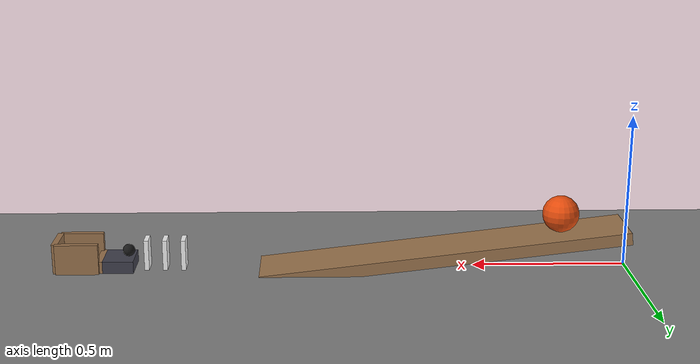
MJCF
<mujoco model="ramp_ball_domino_chain_into_cup">
  <compiler angle="radian"/>
  <option timestep="0.002"/>
  <worldbody>
    <geom name="floor" type="plane" size="6 6 0.1" friction="0.8 0.005 0.002"/>
    <body name="ramp">
      <geom name="ramp" type="box" pos="0.6 0 0.05" size="0.60407 0.1 0.02" euler="0 0.116142 0" friction="0.8 0.005 0.002" rgba="0.6 0.45 0.3 1"/>
    </body>
    <body name="ball1" pos="0.215869 0 0.175358">
      <freejoint/>
      <geom name="ball1" type="sphere" pos="0 0 0" size="0.06" mass="0.08" condim="6" friction="0.8 0.005 0.002" rgba="0.9 0.3 0.05 1"/>
    </body>
    <body name="d1" pos="1.45 0 0.05">
      <freejoint/>
      <geom name="d1" type="box" pos="0 0 0" size="0.0075 0.03 0.05" mass="0.05" friction="0.6 0.005 0.0001" rgba="0.95 0.95 0.95 1"/>
    </body>
    <body name="d2" pos="1.51 0 0.05">
      <freejoint/>
      <geom name="d2" type="box" pos="0 0 0" size="0.0075 0.03 0.05" mass="0.05" friction="0.6 0.005 0.0001" rgba="0.95 0.95 0.95 1"/>
    </body>
    <body name="d3" pos="1.57 0 0.05">
      <freejoint/>
      <geom name="d3" type="box" pos="0 0 0" size="0.0075 0.03 0.05" mass="0.05" friction="0.6 0.005 0.0001" rgba="0.95 0.95 0.95 1"/>
    </body>
    <body name="shelf">
      <geom name="shelf" type="box" pos="1.66 0 0.02" size="0.05 0.06 0.02" friction="0.8 0.005 0.002" rgba="0.25 0.25 0.3 1"/>
    </body>
    <body name="ball2" pos="1.63 0 0.06">
      <freejoint/>
      <geom name="ball2" type="sphere" pos="0 0 0" size="0.02" mass="0.02" condim="6" friction="0.8 0.005 0.003" solref="0.01 1" rgba="0.1 0.1 0.1 1"/>
    </body>
    <body name="cup">
      <geom name="cup_base" type="box" pos="1.79 0 0.0025" size="0.07 0.06 0.0025" solref="0.01 1" rgba="0.6 0.45 0.3 1"/>
      <geom name="cup_near_wall" type="box" pos="1.72 0 0.02" size="0.01 0.06 0.02" solref="0.01 1" rgba="0.6 0.45 0.3 1"/>
      <geom name="cup_far_wall" type="box" pos="1.86 0 0.05" size="0.01 0.06 0.05" solref="0.01 1" rgba="0.6 0.45 0.3 1"/>
      <geom name="cup_left_wall" type="box" pos="1.79 0.06 0.05" size="0.07 0.01 0.05" solref="0.01 1" rgba="0.6 0.45 0.3 1"/>
      <geom name="cup_right_wall" type="box" pos="1.79 -0.06 0.05" size="0.07 0.01 0.05" solref="0.01 1" rgba="0.6 0.45 0.3 1"/>
    </body>
  </worldbody>
  <keyframe>
    <key name="start" qpos="0.215869 0 0.175358 1 0 0 0 1.45 0 0.05 1 0 0 0 1.51 0 0.05 1 0 0 0 1.57 0 0.05 1 0 0 0 1.63 0 0.06 1 0 0 0" qvel="0 0 0 0 0 0 0 0 0 0 0 0 0 0 0 0 0 0 0 0 0 0 0 0 0 0 0 0 0 0"/>
  </keyframe>
</mujoco>
